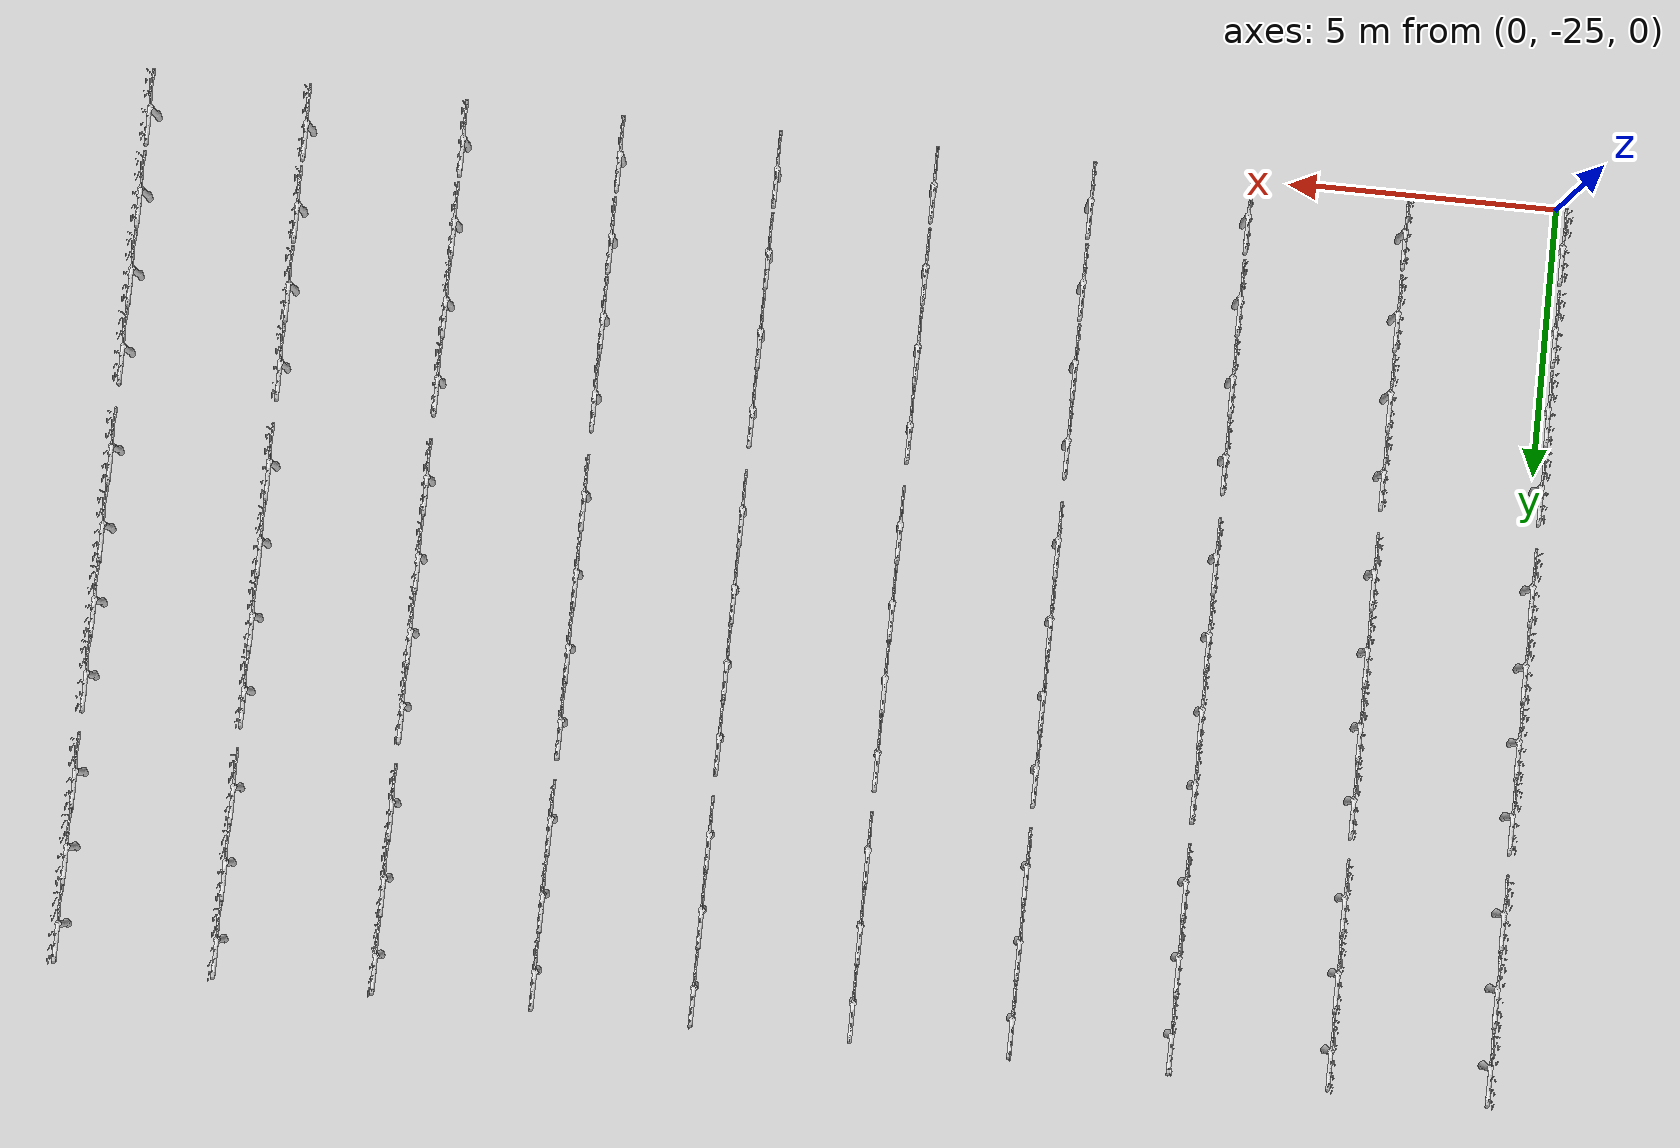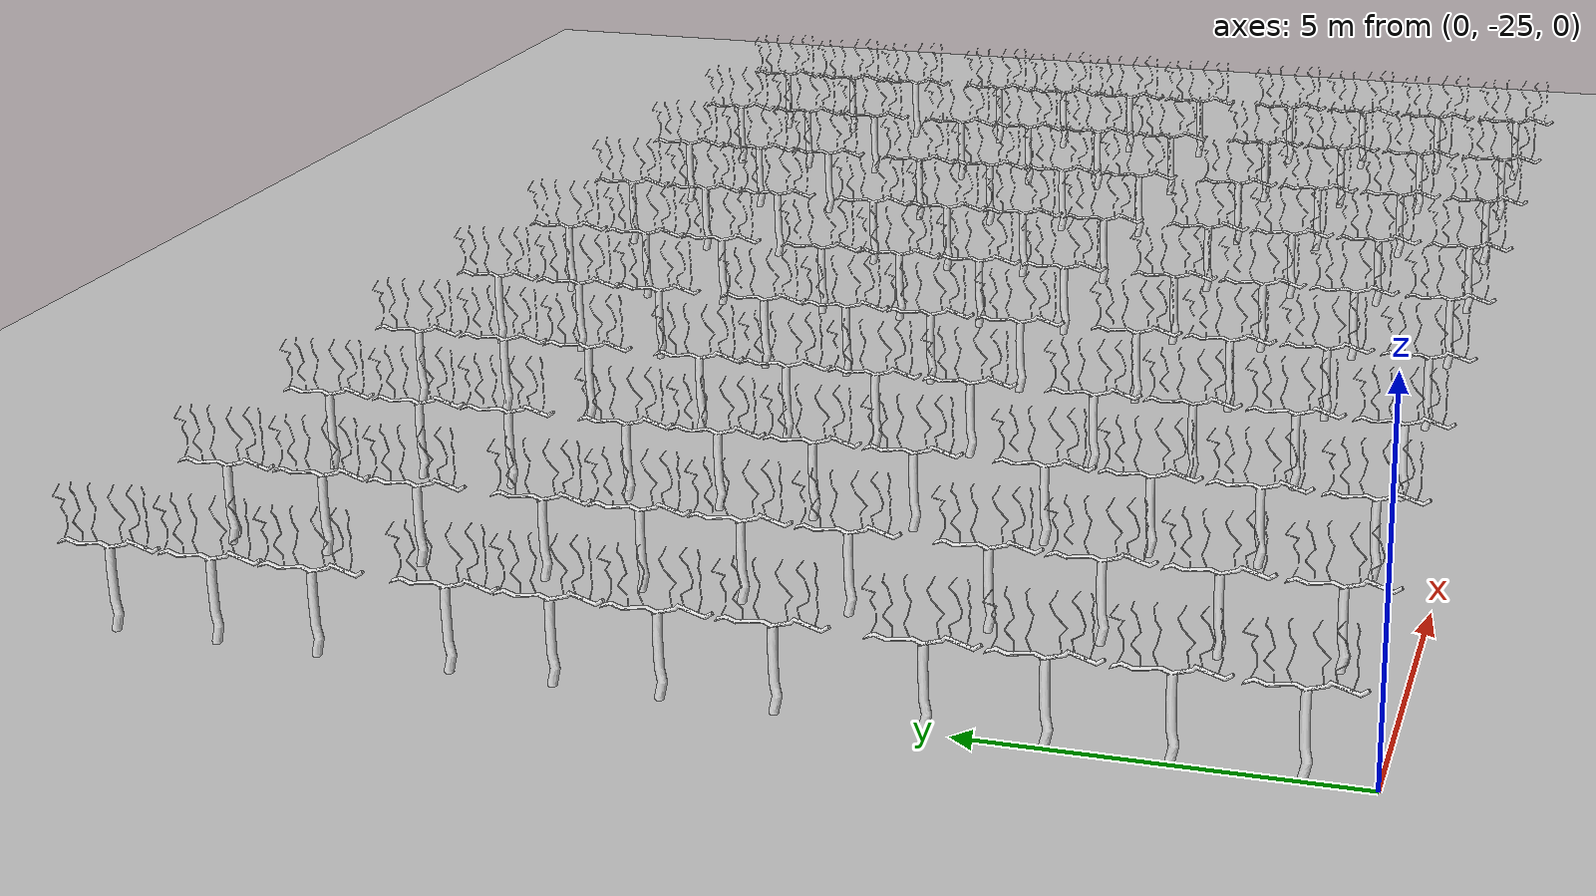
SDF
<sdf version="1.7">
 <world name="agropolis">
  <model name="ground_plane">
   <static>1</static>
   <link name="link">
    <collision name="collision">
     <geometry><plane><normal>0 0 1</normal><size>100 100</size></plane></geometry>
     <surface><friction><ode><mu>100</mu><mu2>50</mu2></ode></friction></surface>
    </collision>
    <visual name="visual">
     <cast_shadows>0</cast_shadows>
     <geometry><plane><normal>0 0 1</normal><size>100 100</size></plane></geometry>
     <material>
      <script><uri>file://media/materials/scripts/gazebo.material</uri><name>Gazebo/Grey</name></script>
     </material>
    </visual>
   </link>
  </model>
  <model name="vinya_6_fila_1">
   <static>1</static>
   <link name="link">
    <collision name="collision">
     <geometry><mesh><uri>file://models/vinya/meshes/vinya.dae</uri></mesh></geometry>
    </collision>
    <visual name="visual">
     <geometry><mesh><uri>file://models/vinya/meshes/vinya.dae</uri></mesh></geometry>
    </visual>
   </link>
   <pose>0.0 -9.06325 0.03 0 -0 1.57</pose>
  </model>
  <model name="vinya_7_fila_1">
   <static>1</static>
   <link name="link">
    <collision name="collision">
     <geometry><mesh><uri>file://models/vinya/meshes/vinya.dae</uri></mesh></geometry>
    </collision>
    <visual name="visual">
     <geometry><mesh><uri>file://models/vinya/meshes/vinya.dae</uri></mesh></geometry>
    </visual>
   </link>
   <pose>0.0 -10.4717 0.03 0 -0 1.57</pose>
  </model>
  <model name="vinya_8_fila_1">
   <static>1</static>
   <link name="link">
    <collision name="collision">
     <geometry><mesh><uri>file://models/vinya/meshes/vinya.dae</uri></mesh></geometry>
    </collision>
    <visual name="visual">
     <geometry><mesh><uri>file://models/vinya/meshes/vinya.dae</uri></mesh></geometry>
    </visual>
   </link>
   <pose>0.0 -11.8519 0.03 0 -0 1.57</pose>
  </model>
  <model name="vinya_9_fila_1">
   <static>1</static>
   <link name="link">
    <collision name="collision">
     <geometry><mesh><uri>file://models/vinya/meshes/vinya.dae</uri></mesh></geometry>
    </collision>
    <visual name="visual">
     <geometry><mesh><uri>file://models/vinya/meshes/vinya.dae</uri></mesh></geometry>
    </visual>
   </link>
   <pose>0.0 -13.6368 0.03 0 -0 1.57</pose>
  </model>
  <model name="vinya_10_fila_1">
   <static>1</static>
   <link name="link">
    <collision name="collision">
     <geometry><mesh><uri>file://models/vinya/meshes/vinya.dae</uri></mesh></geometry>
    </collision>
    <visual name="visual">
     <geometry><mesh><uri>file://models/vinya/meshes/vinya.dae</uri></mesh></geometry>
    </visual>
   </link>
   <pose>0.0 -14.9995 0.03 0 -0 1.57</pose>
  </model>
  <model name="vinya_11_fila_1">
   <static>1</static>
   <link name="link">
    <collision name="collision">
     <geometry><mesh><uri>file://models/vinya/meshes/vinya.dae</uri></mesh></geometry>
    </collision>
    <visual name="visual">
     <geometry><mesh><uri>file://models/vinya/meshes/vinya.dae</uri></mesh></geometry>
    </visual>
   </link>
   <pose>0.0 -16.381 0.03 0 -0 1.57</pose>
  </model>
  <model name="vinya_12_fila_1">
   <static>1</static>
   <link name="link">
    <collision name="collision">
     <geometry><mesh><uri>file://models/vinya/meshes/vinya.dae</uri></mesh></geometry>
    </collision>
    <visual name="visual">
     <geometry><mesh><uri>file://models/vinya/meshes/vinya.dae</uri></mesh></geometry>
    </visual>
   </link>
   <pose>0.0 -17.8271 0.03 0 -0 1.57</pose>
  </model>
  <model name="vinya_13_fila_1">
   <static>1</static>
   <link name="link">
    <collision name="collision">
     <geometry><mesh><uri>file://models/vinya/meshes/vinya.dae</uri></mesh></geometry>
    </collision>
    <visual name="visual">
     <geometry><mesh><uri>file://models/vinya/meshes/vinya.dae</uri></mesh></geometry>
    </visual>
   </link>
   <pose>0.0 -19.6679 0.03 0 -0 1.57</pose>
  </model>
  <model name="vinya_14_fila_1">
   <static>1</static>
   <link name="link">
    <collision name="collision">
     <geometry><mesh><uri>file://models/vinya/meshes/vinya.dae</uri></mesh></geometry>
    </collision>
    <visual name="visual">
     <geometry><mesh><uri>file://models/vinya/meshes/vinya.dae</uri></mesh></geometry>
    </visual>
   </link>
   <pose>0.0 -21.121 0.03 0 -0 1.57</pose>
  </model>
  <model name="vinya_15_fila_1">
   <static>1</static>
   <link name="link">
    <collision name="collision">
     <geometry><mesh><uri>file://models/vinya/meshes/vinya.dae</uri></mesh></geometry>
    </collision>
    <visual name="visual">
     <geometry><mesh><uri>file://models/vinya/meshes/vinya.dae</uri></mesh></geometry>
    </visual>
   </link>
   <pose>0.0 -22.6011 0.03 0 -0 1.57</pose>
  </model>
  <model name="vinya_16_fila_1">
   <static>1</static>
   <link name="link">
    <collision name="collision">
     <geometry><mesh><uri>file://models/vinya/meshes/vinya.dae</uri></mesh></geometry>
    </collision>
    <visual name="visual">
     <geometry><mesh><uri>file://models/vinya/meshes/vinya.dae</uri></mesh></geometry>
    </visual>
   </link>
   <pose>0.0 -24.1275 0.03 0 -0 1.57</pose>
  </model>
  <model name="vinya_6_fila_2">
   <static>1</static>
   <link name="link">
    <collision name="collision">
     <geometry><mesh><uri>file://models/vinya/meshes/vinya.dae</uri></mesh></geometry>
    </collision>
    <visual name="visual">
     <geometry><mesh><uri>file://models/vinya/meshes/vinya.dae</uri></mesh></geometry>
    </visual>
   </link>
   <pose>2.9 -9.06325 0.03 0 -0 1.57</pose>
  </model>
  <model name="vinya_7_fila_2">
   <static>1</static>
   <link name="link">
    <collision name="collision">
     <geometry><mesh><uri>file://models/vinya/meshes/vinya.dae</uri></mesh></geometry>
    </collision>
    <visual name="visual">
     <geometry><mesh><uri>file://models/vinya/meshes/vinya.dae</uri></mesh></geometry>
    </visual>
   </link>
   <pose>2.9 -10.4717 0.03 0 -0 1.57</pose>
  </model>
  <model name="vinya_8_fila_2">
   <static>1</static>
   <link name="link">
    <collision name="collision">
     <geometry><mesh><uri>file://models/vinya/meshes/vinya.dae</uri></mesh></geometry>
    </collision>
    <visual name="visual">
     <geometry><mesh><uri>file://models/vinya/meshes/vinya.dae</uri></mesh></geometry>
    </visual>
   </link>
   <pose>2.9 -11.8519 0.03 0 -0 1.57</pose>
  </model>
  <model name="vinya_9_fila_2">
   <static>1</static>
   <link name="link">
    <collision name="collision">
     <geometry><mesh><uri>file://models/vinya/meshes/vinya.dae</uri></mesh></geometry>
    </collision>
    <visual name="visual">
     <geometry><mesh><uri>file://models/vinya/meshes/vinya.dae</uri></mesh></geometry>
    </visual>
   </link>
   <pose>2.9 -13.6368 0.03 0 -0 1.57</pose>
  </model>
  <model name="vinya_10_fila_2">
   <static>1</static>
   <link name="link">
    <collision name="collision">
     <geometry><mesh><uri>file://models/vinya/meshes/vinya.dae</uri></mesh></geometry>
    </collision>
    <visual name="visual">
     <geometry><mesh><uri>file://models/vinya/meshes/vinya.dae</uri></mesh></geometry>
    </visual>
   </link>
   <pose>2.9 -14.9995 0.03 0 -0 1.57</pose>
  </model>
  <model name="vinya_11_fila_2">
   <static>1</static>
   <link name="link">
    <collision name="collision">
     <geometry><mesh><uri>file://models/vinya/meshes/vinya.dae</uri></mesh></geometry>
    </collision>
    <visual name="visual">
     <geometry><mesh><uri>file://models/vinya/meshes/vinya.dae</uri></mesh></geometry>
    </visual>
   </link>
   <pose>2.9 -16.381 0.03 0 -0 1.57</pose>
  </model>
  <model name="vinya_12_fila_2">
   <static>1</static>
   <link name="link">
    <collision name="collision">
     <geometry><mesh><uri>file://models/vinya/meshes/vinya.dae</uri></mesh></geometry>
    </collision>
    <visual name="visual">
     <geometry><mesh><uri>file://models/vinya/meshes/vinya.dae</uri></mesh></geometry>
    </visual>
   </link>
   <pose>2.9 -17.8271 0.03 0 -0 1.57</pose>
  </model>
  <model name="vinya_13_fila_2">
   <static>1</static>
   <link name="link">
    <collision name="collision">
     <geometry><mesh><uri>file://models/vinya/meshes/vinya.dae</uri></mesh></geometry>
    </collision>
    <visual name="visual">
     <geometry><mesh><uri>file://models/vinya/meshes/vinya.dae</uri></mesh></geometry>
    </visual>
   </link>
   <pose>2.9 -19.6679 0.03 0 -0 1.57</pose>
  </model>
  <model name="vinya_14_fila_2">
   <static>1</static>
   <link name="link">
    <collision name="collision">
     <geometry><mesh><uri>file://models/vinya/meshes/vinya.dae</uri></mesh></geometry>
    </collision>
    <visual name="visual">
     <geometry><mesh><uri>file://models/vinya/meshes/vinya.dae</uri></mesh></geometry>
    </visual>
   </link>
   <pose>2.9 -21.121 0.03 0 -0 1.57</pose>
  </model>
  <model name="vinya_15_fila_2">
   <static>1</static>
   <link name="link">
    <collision name="collision">
     <geometry><mesh><uri>file://models/vinya/meshes/vinya.dae</uri></mesh></geometry>
    </collision>
    <visual name="visual">
     <geometry><mesh><uri>file://models/vinya/meshes/vinya.dae</uri></mesh></geometry>
    </visual>
   </link>
   <pose>2.9 -22.6011 0.03 0 -0 1.57</pose>
  </model>
  <model name="vinya_16_fila_2">
   <static>1</static>
   <link name="link">
    <collision name="collision">
     <geometry><mesh><uri>file://models/vinya/meshes/vinya.dae</uri></mesh></geometry>
    </collision>
    <visual name="visual">
     <geometry><mesh><uri>file://models/vinya/meshes/vinya.dae</uri></mesh></geometry>
    </visual>
   </link>
   <pose>2.9 -24.1275 0.03 0 -0 1.57</pose>
  </model>
  <model name="vinya_6_fila_3">
   <static>1</static>
   <link name="link">
    <collision name="collision">
     <geometry><mesh><uri>file://models/vinya/meshes/vinya.dae</uri></mesh></geometry>
    </collision>
    <visual name="visual">
     <geometry><mesh><uri>file://models/vinya/meshes/vinya.dae</uri></mesh></geometry>
    </visual>
   </link>
   <pose>5.8 -9.06325 0.03 0 -0 1.57</pose>
  </model>
  <model name="vinya_7_fila_3">
   <static>1</static>
   <link name="link">
    <collision name="collision">
     <geometry><mesh><uri>file://models/vinya/meshes/vinya.dae</uri></mesh></geometry>
    </collision>
    <visual name="visual">
     <geometry><mesh><uri>file://models/vinya/meshes/vinya.dae</uri></mesh></geometry>
    </visual>
   </link>
   <pose>5.8 -10.4717 0.03 0 -0 1.57</pose>
  </model>
  <model name="vinya_8_fila_3">
   <static>1</static>
   <link name="link">
    <collision name="collision">
     <geometry><mesh><uri>file://models/vinya/meshes/vinya.dae</uri></mesh></geometry>
    </collision>
    <visual name="visual">
     <geometry><mesh><uri>file://models/vinya/meshes/vinya.dae</uri></mesh></geometry>
    </visual>
   </link>
   <pose>5.8 -11.8519 0.03 0 -0 1.57</pose>
  </model>
  <model name="vinya_9_fila_3">
   <static>1</static>
   <link name="link">
    <collision name="collision">
     <geometry><mesh><uri>file://models/vinya/meshes/vinya.dae</uri></mesh></geometry>
    </collision>
    <visual name="visual">
     <geometry><mesh><uri>file://models/vinya/meshes/vinya.dae</uri></mesh></geometry>
    </visual>
   </link>
   <pose>5.8 -13.6368 0.03 0 -0 1.57</pose>
  </model>
  <model name="vinya_10_fila_3">
   <static>1</static>
   <link name="link">
    <collision name="collision">
     <geometry><mesh><uri>file://models/vinya/meshes/vinya.dae</uri></mesh></geometry>
    </collision>
    <visual name="visual">
     <geometry><mesh><uri>file://models/vinya/meshes/vinya.dae</uri></mesh></geometry>
    </visual>
   </link>
   <pose>5.8 -14.9995 0.03 0 -0 1.57</pose>
  </model>
  <model name="vinya_11_fila_3">
   <static>1</static>
   <link name="link">
    <collision name="collision">
     <geometry><mesh><uri>file://models/vinya/meshes/vinya.dae</uri></mesh></geometry>
    </collision>
    <visual name="visual">
     <geometry><mesh><uri>file://models/vinya/meshes/vinya.dae</uri></mesh></geometry>
    </visual>
   </link>
   <pose>5.8 -16.381 0.03 0 -0 1.57</pose>
  </model>
  <model name="vinya_12_fila_3">
   <static>1</static>
   <link name="link">
    <collision name="collision">
     <geometry><mesh><uri>file://models/vinya/meshes/vinya.dae</uri></mesh></geometry>
    </collision>
    <visual name="visual">
     <geometry><mesh><uri>file://models/vinya/meshes/vinya.dae</uri></mesh></geometry>
    </visual>
   </link>
   <pose>5.8 -17.8271 0.03 0 -0 1.57</pose>
  </model>
  <model name="vinya_13_fila_3">
   <static>1</static>
   <link name="link">
    <collision name="collision">
     <geometry><mesh><uri>file://models/vinya/meshes/vinya.dae</uri></mesh></geometry>
    </collision>
    <visual name="visual">
     <geometry><mesh><uri>file://models/vinya/meshes/vinya.dae</uri></mesh></geometry>
    </visual>
   </link>
   <pose>5.8 -19.6679 0.03 0 -0 1.57</pose>
  </model>
  <model name="vinya_14_fila_3">
   <static>1</static>
   <link name="link">
    <collision name="collision">
     <geometry><mesh><uri>file://models/vinya/meshes/vinya.dae</uri></mesh></geometry>
    </collision>
    <visual name="visual">
     <geometry><mesh><uri>file://models/vinya/meshes/vinya.dae</uri></mesh></geometry>
    </visual>
   </link>
   <pose>5.8 -21.121 0.03 0 -0 1.57</pose>
  </model>
  <model name="vinya_15_fila_3">
   <static>1</static>
   <link name="link">
    <collision name="collision">
     <geometry><mesh><uri>file://models/vinya/meshes/vinya.dae</uri></mesh></geometry>
    </collision>
    <visual name="visual">
     <geometry><mesh><uri>file://models/vinya/meshes/vinya.dae</uri></mesh></geometry>
    </visual>
   </link>
   <pose>5.8 -22.6011 0.03 0 -0 1.57</pose>
  </model>
  <model name="vinya_16_fila_3">
   <static>1</static>
   <link name="link">
    <collision name="collision">
     <geometry><mesh><uri>file://models/vinya/meshes/vinya.dae</uri></mesh></geometry>
    </collision>
    <visual name="visual">
     <geometry><mesh><uri>file://models/vinya/meshes/vinya.dae</uri></mesh></geometry>
    </visual>
   </link>
   <pose>5.8 -24.1275 0.03 0 -0 1.57</pose>
  </model>
  <model name="vinya_6_fila_4">
   <static>1</static>
   <link name="link">
    <collision name="collision">
     <geometry><mesh><uri>file://models/vinya/meshes/vinya.dae</uri></mesh></geometry>
    </collision>
    <visual name="visual">
     <geometry><mesh><uri>file://models/vinya/meshes/vinya.dae</uri></mesh></geometry>
    </visual>
   </link>
   <pose>8.7 -9.06325 0.03 0 -0 1.57</pose>
  </model>
  <model name="vinya_7_fila_4">
   <static>1</static>
   <link name="link">
    <collision name="collision">
     <geometry><mesh><uri>file://models/vinya/meshes/vinya.dae</uri></mesh></geometry>
    </collision>
    <visual name="visual">
     <geometry><mesh><uri>file://models/vinya/meshes/vinya.dae</uri></mesh></geometry>
    </visual>
   </link>
   <pose>8.7 -10.4717 0.03 0 -0 1.57</pose>
  </model>
  <model name="vinya_8_fila_4">
   <static>1</static>
   <link name="link">
    <collision name="collision">
     <geometry><mesh><uri>file://models/vinya/meshes/vinya.dae</uri></mesh></geometry>
    </collision>
    <visual name="visual">
     <geometry><mesh><uri>file://models/vinya/meshes/vinya.dae</uri></mesh></geometry>
    </visual>
   </link>
   <pose>8.7 -11.8519 0.03 0 -0 1.57</pose>
  </model>
  <model name="vinya_9_fila_4">
   <static>1</static>
   <link name="link">
    <collision name="collision">
     <geometry><mesh><uri>file://models/vinya/meshes/vinya.dae</uri></mesh></geometry>
    </collision>
    <visual name="visual">
     <geometry><mesh><uri>file://models/vinya/meshes/vinya.dae</uri></mesh></geometry>
    </visual>
   </link>
   <pose>8.7 -13.6368 0.03 0 -0 1.57</pose>
  </model>
  <model name="vinya_10_fila_4">
   <static>1</static>
   <link name="link">
    <collision name="collision">
     <geometry><mesh><uri>file://models/vinya/meshes/vinya.dae</uri></mesh></geometry>
    </collision>
    <visual name="visual">
     <geometry><mesh><uri>file://models/vinya/meshes/vinya.dae</uri></mesh></geometry>
    </visual>
   </link>
   <pose>8.7 -14.9995 0.03 0 -0 1.57</pose>
  </model>
  <model name="vinya_11_fila_4">
   <static>1</static>
   <link name="link">
    <collision name="collision">
     <geometry><mesh><uri>file://models/vinya/meshes/vinya.dae</uri></mesh></geometry>
    </collision>
    <visual name="visual">
     <geometry><mesh><uri>file://models/vinya/meshes/vinya.dae</uri></mesh></geometry>
    </visual>
   </link>
   <pose>8.7 -16.381 0.03 0 -0 1.57</pose>
  </model>
  <model name="vinya_12_fila_4">
   <static>1</static>
   <link name="link">
    <collision name="collision">
     <geometry><mesh><uri>file://models/vinya/meshes/vinya.dae</uri></mesh></geometry>
    </collision>
    <visual name="visual">
     <geometry><mesh><uri>file://models/vinya/meshes/vinya.dae</uri></mesh></geometry>
    </visual>
   </link>
   <pose>8.7 -17.8271 0.03 0 -0 1.57</pose>
  </model>
  <model name="vinya_13_fila_4">
   <static>1</static>
   <link name="link">
    <collision name="collision">
     <geometry><mesh><uri>file://models/vinya/meshes/vinya.dae</uri></mesh></geometry>
    </collision>
    <visual name="visual">
     <geometry><mesh><uri>file://models/vinya/meshes/vinya.dae</uri></mesh></geometry>
    </visual>
   </link>
   <pose>8.7 -19.6679 0.03 0 -0 1.57</pose>
  </model>
  <model name="vinya_14_fila_4">
   <static>1</static>
   <link name="link">
    <collision name="collision">
     <geometry><mesh><uri>file://models/vinya/meshes/vinya.dae</uri></mesh></geometry>
    </collision>
    <visual name="visual">
     <geometry><mesh><uri>file://models/vinya/meshes/vinya.dae</uri></mesh></geometry>
    </visual>
   </link>
   <pose>8.7 -21.121 0.03 0 -0 1.57</pose>
  </model>
  <model name="vinya_15_fila_4">
   <static>1</static>
   <link name="link">
    <collision name="collision">
     <geometry><mesh><uri>file://models/vinya/meshes/vinya.dae</uri></mesh></geometry>
    </collision>
    <visual name="visual">
     <geometry><mesh><uri>file://models/vinya/meshes/vinya.dae</uri></mesh></geometry>
    </visual>
   </link>
   <pose>8.7 -22.6011 0.03 0 -0 1.57</pose>
  </model>
  <model name="vinya_16_fila_4">
   <static>1</static>
   <link name="link">
    <collision name="collision">
     <geometry><mesh><uri>file://models/vinya/meshes/vinya.dae</uri></mesh></geometry>
    </collision>
    <visual name="visual">
     <geometry><mesh><uri>file://models/vinya/meshes/vinya.dae</uri></mesh></geometry>
    </visual>
   </link>
   <pose>8.7 -24.1275 0.03 0 -0 1.57</pose>
  </model>
  <model name="vinya_6_fila_5">
   <static>1</static>
   <link name="link">
    <collision name="collision">
     <geometry><mesh><uri>file://models/vinya/meshes/vinya.dae</uri></mesh></geometry>
    </collision>
    <visual name="visual">
     <geometry><mesh><uri>file://models/vinya/meshes/vinya.dae</uri></mesh></geometry>
    </visual>
   </link>
   <pose>11.6 -9.06325 0.03 0 -0 1.57</pose>
  </model>
  <model name="vinya_7_fila_5">
   <static>1</static>
   <link name="link">
    <collision name="collision">
     <geometry><mesh><uri>file://models/vinya/meshes/vinya.dae</uri></mesh></geometry>
    </collision>
    <visual name="visual">
     <geometry><mesh><uri>file://models/vinya/meshes/vinya.dae</uri></mesh></geometry>
    </visual>
   </link>
   <pose>11.6 -10.4717 0.03 0 -0 1.57</pose>
  </model>
  <model name="vinya_8_fila_5">
   <static>1</static>
   <link name="link">
    <collision name="collision">
     <geometry><mesh><uri>file://models/vinya/meshes/vinya.dae</uri></mesh></geometry>
    </collision>
    <visual name="visual">
     <geometry><mesh><uri>file://models/vinya/meshes/vinya.dae</uri></mesh></geometry>
    </visual>
   </link>
   <pose>11.6 -11.8519 0.03 0 -0 1.57</pose>
  </model>
  <model name="vinya_9_fila_5">
   <static>1</static>
   <link name="link">
    <collision name="collision">
     <geometry><mesh><uri>file://models/vinya/meshes/vinya.dae</uri></mesh></geometry>
    </collision>
    <visual name="visual">
     <geometry><mesh><uri>file://models/vinya/meshes/vinya.dae</uri></mesh></geometry>
    </visual>
   </link>
   <pose>11.6 -13.6368 0.03 0 -0 1.57</pose>
  </model>
  <model name="vinya_10_fila_5">
   <static>1</static>
   <link name="link">
    <collision name="collision">
     <geometry><mesh><uri>file://models/vinya/meshes/vinya.dae</uri></mesh></geometry>
    </collision>
    <visual name="visual">
     <geometry><mesh><uri>file://models/vinya/meshes/vinya.dae</uri></mesh></geometry>
    </visual>
   </link>
   <pose>11.6 -14.9995 0.03 0 -0 1.57</pose>
  </model>
  <model name="vinya_11_fila_5">
   <static>1</static>
   <link name="link">
    <collision name="collision">
     <geometry><mesh><uri>file://models/vinya/meshes/vinya.dae</uri></mesh></geometry>
    </collision>
    <visual name="visual">
     <geometry><mesh><uri>file://models/vinya/meshes/vinya.dae</uri></mesh></geometry>
    </visual>
   </link>
   <pose>11.6 -16.381 0.03 0 -0 1.57</pose>
  </model>
  <model name="vinya_12_fila_5">
   <static>1</static>
   <link name="link">
    <collision name="collision">
     <geometry><mesh><uri>file://models/vinya/meshes/vinya.dae</uri></mesh></geometry>
    </collision>
    <visual name="visual">
     <geometry><mesh><uri>file://models/vinya/meshes/vinya.dae</uri></mesh></geometry>
    </visual>
   </link>
   <pose>11.6 -17.8271 0.03 0 -0 1.57</pose>
  </model>
  <model name="vinya_13_fila_5">
   <static>1</static>
   <link name="link">
    <collision name="collision">
     <geometry><mesh><uri>file://models/vinya/meshes/vinya.dae</uri></mesh></geometry>
    </collision>
    <visual name="visual">
     <geometry><mesh><uri>file://models/vinya/meshes/vinya.dae</uri></mesh></geometry>
    </visual>
   </link>
   <pose>11.6 -19.6679 0.03 0 -0 1.57</pose>
  </model>
  <model name="vinya_14_fila_5">
   <static>1</static>
   <link name="link">
    <collision name="collision">
     <geometry><mesh><uri>file://models/vinya/meshes/vinya.dae</uri></mesh></geometry>
    </collision>
    <visual name="visual">
     <geometry><mesh><uri>file://models/vinya/meshes/vinya.dae</uri></mesh></geometry>
    </visual>
   </link>
   <pose>11.6 -21.121 0.03 0 -0 1.57</pose>
  </model>
  <model name="vinya_15_fila_5">
   <static>1</static>
   <link name="link">
    <collision name="collision">
     <geometry><mesh><uri>file://models/vinya/meshes/vinya.dae</uri></mesh></geometry>
    </collision>
    <visual name="visual">
     <geometry><mesh><uri>file://models/vinya/meshes/vinya.dae</uri></mesh></geometry>
    </visual>
   </link>
   <pose>11.6 -22.6011 0.03 0 -0 1.57</pose>
  </model>
  <model name="vinya_16_fila_5">
   <static>1</static>
   <link name="link">
    <collision name="collision">
     <geometry><mesh><uri>file://models/vinya/meshes/vinya.dae</uri></mesh></geometry>
    </collision>
    <visual name="visual">
     <geometry><mesh><uri>file://models/vinya/meshes/vinya.dae</uri></mesh></geometry>
    </visual>
   </link>
   <pose>11.6 -24.1275 0.03 0 -0 1.57</pose>
  </model>
  <model name="vinya_6_fila_6">
   <static>1</static>
   <link name="link">
    <collision name="collision">
     <geometry><mesh><uri>file://models/vinya/meshes/vinya.dae</uri></mesh></geometry>
    </collision>
    <visual name="visual">
     <geometry><mesh><uri>file://models/vinya/meshes/vinya.dae</uri></mesh></geometry>
    </visual>
   </link>
   <pose>14.5 -9.06325 0.03 0 -0 1.57</pose>
  </model>
  <model name="vinya_7_fila_6">
   <static>1</static>
   <link name="link">
    <collision name="collision">
     <geometry><mesh><uri>file://models/vinya/meshes/vinya.dae</uri></mesh></geometry>
    </collision>
    <visual name="visual">
     <geometry><mesh><uri>file://models/vinya/meshes/vinya.dae</uri></mesh></geometry>
    </visual>
   </link>
   <pose>14.5 -10.4717 0.03 0 -0 1.57</pose>
  </model>
  <model name="vinya_8_fila_6">
   <static>1</static>
   <link name="link">
    <collision name="collision">
     <geometry><mesh><uri>file://models/vinya/meshes/vinya.dae</uri></mesh></geometry>
    </collision>
    <visual name="visual">
     <geometry><mesh><uri>file://models/vinya/meshes/vinya.dae</uri></mesh></geometry>
    </visual>
   </link>
   <pose>14.5 -11.8519 0.03 0 -0 1.57</pose>
  </model>
  <model name="vinya_9_fila_6">
   <static>1</static>
   <link name="link">
    <collision name="collision">
     <geometry><mesh><uri>file://models/vinya/meshes/vinya.dae</uri></mesh></geometry>
    </collision>
    <visual name="visual">
     <geometry><mesh><uri>file://models/vinya/meshes/vinya.dae</uri></mesh></geometry>
    </visual>
   </link>
   <pose>14.5 -13.6368 0.03 0 -0 1.57</pose>
  </model>
  <model name="vinya_10_fila_6">
   <static>1</static>
   <link name="link">
    <collision name="collision">
     <geometry><mesh><uri>file://models/vinya/meshes/vinya.dae</uri></mesh></geometry>
    </collision>
    <visual name="visual">
     <geometry><mesh><uri>file://models/vinya/meshes/vinya.dae</uri></mesh></geometry>
    </visual>
   </link>
   <pose>14.5 -14.9995 0.03 0 -0 1.57</pose>
  </model>
  <model name="vinya_11_fila_6">
   <static>1</static>
   <link name="link">
    <collision name="collision">
     <geometry><mesh><uri>file://models/vinya/meshes/vinya.dae</uri></mesh></geometry>
    </collision>
    <visual name="visual">
     <geometry><mesh><uri>file://models/vinya/meshes/vinya.dae</uri></mesh></geometry>
    </visual>
   </link>
   <pose>14.5 -16.381 0.03 0 -0 1.57</pose>
  </model>
  <model name="vinya_12_fila_6">
   <static>1</static>
   <link name="link">
    <collision name="collision">
     <geometry><mesh><uri>file://models/vinya/meshes/vinya.dae</uri></mesh></geometry>
    </collision>
    <visual name="visual">
     <geometry><mesh><uri>file://models/vinya/meshes/vinya.dae</uri></mesh></geometry>
    </visual>
   </link>
   <pose>14.5 -17.8271 0.03 0 -0 1.57</pose>
  </model>
  <model name="vinya_13_fila_6">
   <static>1</static>
   <link name="link">
    <collision name="collision">
     <geometry><mesh><uri>file://models/vinya/meshes/vinya.dae</uri></mesh></geometry>
    </collision>
    <visual name="visual">
     <geometry><mesh><uri>file://models/vinya/meshes/vinya.dae</uri></mesh></geometry>
    </visual>
   </link>
   <pose>14.5 -19.6679 0.03 0 -0 1.57</pose>
  </model>
  <model name="vinya_14_fila_6">
   <static>1</static>
   <link name="link">
    <collision name="collision">
     <geometry><mesh><uri>file://models/vinya/meshes/vinya.dae</uri></mesh></geometry>
    </collision>
    <visual name="visual">
     <geometry><mesh><uri>file://models/vinya/meshes/vinya.dae</uri></mesh></geometry>
    </visual>
   </link>
   <pose>14.5 -21.121 0.03 0 -0 1.57</pose>
  </model>
  <model name="vinya_15_fila_6">
   <static>1</static>
   <link name="link">
    <collision name="collision">
     <geometry><mesh><uri>file://models/vinya/meshes/vinya.dae</uri></mesh></geometry>
    </collision>
    <visual name="visual">
     <geometry><mesh><uri>file://models/vinya/meshes/vinya.dae</uri></mesh></geometry>
    </visual>
   </link>
   <pose>14.5 -22.6011 0.03 0 -0 1.57</pose>
  </model>
  <model name="vinya_16_fila_6">
   <static>1</static>
   <link name="link">
    <collision name="collision">
     <geometry><mesh><uri>file://models/vinya/meshes/vinya.dae</uri></mesh></geometry>
    </collision>
    <visual name="visual">
     <geometry><mesh><uri>file://models/vinya/meshes/vinya.dae</uri></mesh></geometry>
    </visual>
   </link>
   <pose>14.5 -24.1275 0.03 0 -0 1.57</pose>
  </model>
  <model name="vinya_6_fila_7">
   <static>1</static>
   <link name="link">
    <collision name="collision">
     <geometry><mesh><uri>file://models/vinya/meshes/vinya.dae</uri></mesh></geometry>
    </collision>
    <visual name="visual">
     <geometry><mesh><uri>file://models/vinya/meshes/vinya.dae</uri></mesh></geometry>
    </visual>
   </link>
   <pose>17.4 -9.06325 0.03 0 -0 1.57</pose>
  </model>
  <model name="vinya_7_fila_7">
   <static>1</static>
   <link name="link">
    <collision name="collision">
     <geometry><mesh><uri>file://models/vinya/meshes/vinya.dae</uri></mesh></geometry>
    </collision>
    <visual name="visual">
     <geometry><mesh><uri>file://models/vinya/meshes/vinya.dae</uri></mesh></geometry>
    </visual>
   </link>
   <pose>17.4 -10.4717 0.03 0 -0 1.57</pose>
  </model>
  <model name="vinya_8_fila_7">
   <static>1</static>
   <link name="link">
    <collision name="collision">
     <geometry><mesh><uri>file://models/vinya/meshes/vinya.dae</uri></mesh></geometry>
    </collision>
    <visual name="visual">
     <geometry><mesh><uri>file://models/vinya/meshes/vinya.dae</uri></mesh></geometry>
    </visual>
   </link>
   <pose>17.4 -11.8519 0.03 0 -0 1.57</pose>
  </model>
  <model name="vinya_9_fila_7">
   <static>1</static>
   <link name="link">
    <collision name="collision">
     <geometry><mesh><uri>file://models/vinya/meshes/vinya.dae</uri></mesh></geometry>
    </collision>
    <visual name="visual">
     <geometry><mesh><uri>file://models/vinya/meshes/vinya.dae</uri></mesh></geometry>
    </visual>
   </link>
   <pose>17.4 -13.6368 0.03 0 -0 1.57</pose>
  </model>
  <model name="vinya_10_fila_7">
   <static>1</static>
   <link name="link">
    <collision name="collision">
     <geometry><mesh><uri>file://models/vinya/meshes/vinya.dae</uri></mesh></geometry>
    </collision>
    <visual name="visual">
     <geometry><mesh><uri>file://models/vinya/meshes/vinya.dae</uri></mesh></geometry>
    </visual>
   </link>
   <pose>17.4 -14.9995 0.03 0 -0 1.57</pose>
  </model>
  <model name="vinya_11_fila_7">
   <static>1</static>
   <link name="link">
    <collision name="collision">
     <geometry><mesh><uri>file://models/vinya/meshes/vinya.dae</uri></mesh></geometry>
    </collision>
    <visual name="visual">
     <geometry><mesh><uri>file://models/vinya/meshes/vinya.dae</uri></mesh></geometry>
    </visual>
   </link>
   <pose>17.4 -16.381 0.03 0 -0 1.57</pose>
  </model>
  <model name="vinya_12_fila_7">
   <static>1</static>
   <link name="link">
    <collision name="collision">
     <geometry><mesh><uri>file://models/vinya/meshes/vinya.dae</uri></mesh></geometry>
    </collision>
    <visual name="visual">
     <geometry><mesh><uri>file://models/vinya/meshes/vinya.dae</uri></mesh></geometry>
    </visual>
   </link>
   <pose>17.4 -17.8271 0.03 0 -0 1.57</pose>
  </model>
  <model name="vinya_13_fila_7">
   <static>1</static>
   <link name="link">
    <collision name="collision">
     <geometry><mesh><uri>file://models/vinya/meshes/vinya.dae</uri></mesh></geometry>
    </collision>
    <visual name="visual">
     <geometry><mesh><uri>file://models/vinya/meshes/vinya.dae</uri></mesh></geometry>
    </visual>
   </link>
   <pose>17.4 -19.6679 0.03 0 -0 1.57</pose>
  </model>
  <model name="vinya_14_fila_7">
   <static>1</static>
   <link name="link">
    <collision name="collision">
     <geometry><mesh><uri>file://models/vinya/meshes/vinya.dae</uri></mesh></geometry>
    </collision>
    <visual name="visual">
     <geometry><mesh><uri>file://models/vinya/meshes/vinya.dae</uri></mesh></geometry>
    </visual>
   </link>
   <pose>17.4 -21.121 0.03 0 -0 1.57</pose>
  </model>
  <model name="vinya_15_fila_7">
   <static>1</static>
   <link name="link">
    <collision name="collision">
     <geometry><mesh><uri>file://models/vinya/meshes/vinya.dae</uri></mesh></geometry>
    </collision>
    <visual name="visual">
     <geometry><mesh><uri>file://models/vinya/meshes/vinya.dae</uri></mesh></geometry>
    </visual>
   </link>
   <pose>17.4 -22.6011 0.03 0 -0 1.57</pose>
  </model>
  <model name="vinya_16_fila_7">
   <static>1</static>
   <link name="link">
    <collision name="collision">
     <geometry><mesh><uri>file://models/vinya/meshes/vinya.dae</uri></mesh></geometry>
    </collision>
    <visual name="visual">
     <geometry><mesh><uri>file://models/vinya/meshes/vinya.dae</uri></mesh></geometry>
    </visual>
   </link>
   <pose>17.4 -24.1275 0.03 0 -0 1.57</pose>
  </model>
  <model name="vinya_6_fila_8">
   <static>1</static>
   <link name="link">
    <collision name="collision">
     <geometry><mesh><uri>file://models/vinya/meshes/vinya.dae</uri></mesh></geometry>
    </collision>
    <visual name="visual">
     <geometry><mesh><uri>file://models/vinya/meshes/vinya.dae</uri></mesh></geometry>
    </visual>
   </link>
   <pose>20.3 -9.06325 0.03 0 -0 1.57</pose>
  </model>
  <model name="vinya_7_fila_8">
   <static>1</static>
   <link name="link">
    <collision name="collision">
     <geometry><mesh><uri>file://models/vinya/meshes/vinya.dae</uri></mesh></geometry>
    </collision>
    <visual name="visual">
     <geometry><mesh><uri>file://models/vinya/meshes/vinya.dae</uri></mesh></geometry>
    </visual>
   </link>
   <pose>20.3 -10.4717 0.03 0 -0 1.57</pose>
  </model>
  <model name="vinya_8_fila_8">
   <static>1</static>
   <link name="link">
    <collision name="collision">
     <geometry><mesh><uri>file://models/vinya/meshes/vinya.dae</uri></mesh></geometry>
    </collision>
    <visual name="visual">
     <geometry><mesh><uri>file://models/vinya/meshes/vinya.dae</uri></mesh></geometry>
    </visual>
   </link>
   <pose>20.3 -11.8519 0.03 0 -0 1.57</pose>
  </model>
  <model name="vinya_9_fila_8">
   <static>1</static>
   <link name="link">
    <collision name="collision">
     <geometry><mesh><uri>file://models/vinya/meshes/vinya.dae</uri></mesh></geometry>
    </collision>
    <visual name="visual">
     <geometry><mesh><uri>file://models/vinya/meshes/vinya.dae</uri></mesh></geometry>
    </visual>
   </link>
   <pose>20.3 -13.6368 0.03 0 -0 1.57</pose>
  </model>
  <model name="vinya_10_fila_8">
   <static>1</static>
   <link name="link">
    <collision name="collision">
     <geometry><mesh><uri>file://models/vinya/meshes/vinya.dae</uri></mesh></geometry>
    </collision>
    <visual name="visual">
     <geometry><mesh><uri>file://models/vinya/meshes/vinya.dae</uri></mesh></geometry>
    </visual>
   </link>
   <pose>20.3 -14.9995 0.03 0 -0 1.57</pose>
  </model>
  <model name="vinya_11_fila_8">
   <static>1</static>
   <link name="link">
    <collision name="collision">
     <geometry><mesh><uri>file://models/vinya/meshes/vinya.dae</uri></mesh></geometry>
    </collision>
    <visual name="visual">
     <geometry><mesh><uri>file://models/vinya/meshes/vinya.dae</uri></mesh></geometry>
    </visual>
   </link>
   <pose>20.3 -16.381 0.03 0 -0 1.57</pose>
  </model>
  <model name="vinya_12_fila_8">
   <static>1</static>
   <link name="link">
    <collision name="collision">
     <geometry><mesh><uri>file://models/vinya/meshes/vinya.dae</uri></mesh></geometry>
    </collision>
    <visual name="visual">
     <geometry><mesh><uri>file://models/vinya/meshes/vinya.dae</uri></mesh></geometry>
    </visual>
   </link>
   <pose>20.3 -17.8271 0.03 0 -0 1.57</pose>
  </model>
  <model name="vinya_13_fila_8">
   <static>1</static>
   <link name="link">
    <collision name="collision">
     <geometry><mesh><uri>file://models/vinya/meshes/vinya.dae</uri></mesh></geometry>
    </collision>
    <visual name="visual">
     <geometry><mesh><uri>file://models/vinya/meshes/vinya.dae</uri></mesh></geometry>
    </visual>
   </link>
   <pose>20.3 -19.6679 0.03 0 -0 1.57</pose>
  </model>
  <model name="vinya_14_fila_8">
   <static>1</static>
   <link name="link">
    <collision name="collision">
     <geometry><mesh><uri>file://models/vinya/meshes/vinya.dae</uri></mesh></geometry>
    </collision>
    <visual name="visual">
     <geometry><mesh><uri>file://models/vinya/meshes/vinya.dae</uri></mesh></geometry>
    </visual>
   </link>
   <pose>20.3 -21.121 0.03 0 -0 1.57</pose>
  </model>
  <model name="vinya_15_fila_8">
   <static>1</static>
   <link name="link">
    <collision name="collision">
     <geometry><mesh><uri>file://models/vinya/meshes/vinya.dae</uri></mesh></geometry>
    </collision>
    <visual name="visual">
     <geometry><mesh><uri>file://models/vinya/meshes/vinya.dae</uri></mesh></geometry>
    </visual>
   </link>
   <pose>20.3 -22.6011 0.03 0 -0 1.57</pose>
  </model>
  <model name="vinya_16_fila_8">
   <static>1</static>
   <link name="link">
    <collision name="collision">
     <geometry><mesh><uri>file://models/vinya/meshes/vinya.dae</uri></mesh></geometry>
    </collision>
    <visual name="visual">
     <geometry><mesh><uri>file://models/vinya/meshes/vinya.dae</uri></mesh></geometry>
    </visual>
   </link>
   <pose>20.3 -24.1275 0.03 0 -0 1.57</pose>
  </model>
  <model name="vinya_6_fila_9">
   <static>1</static>
   <link name="link">
    <collision name="collision">
     <geometry><mesh><uri>file://models/vinya/meshes/vinya.dae</uri></mesh></geometry>
    </collision>
    <visual name="visual">
     <geometry><mesh><uri>file://models/vinya/meshes/vinya.dae</uri></mesh></geometry>
    </visual>
   </link>
   <pose>23.2 -9.06325 0.03 0 -0 1.57</pose>
  </model>
  <model name="vinya_7_fila_9">
   <static>1</static>
   <link name="link">
    <collision name="collision">
     <geometry><mesh><uri>file://models/vinya/meshes/vinya.dae</uri></mesh></geometry>
    </collision>
    <visual name="visual">
     <geometry><mesh><uri>file://models/vinya/meshes/vinya.dae</uri></mesh></geometry>
    </visual>
   </link>
   <pose>23.2 -10.4717 0.03 0 -0 1.57</pose>
  </model>
  <model name="vinya_8_fila_9">
   <static>1</static>
   <link name="link">
    <collision name="collision">
     <geometry><mesh><uri>file://models/vinya/meshes/vinya.dae</uri></mesh></geometry>
    </collision>
    <visual name="visual">
     <geometry><mesh><uri>file://models/vinya/meshes/vinya.dae</uri></mesh></geometry>
    </visual>
   </link>
   <pose>23.2 -11.8519 0.03 0 -0 1.57</pose>
  </model>
  <model name="vinya_9_fila_9">
   <static>1</static>
   <link name="link">
    <collision name="collision">
     <geometry><mesh><uri>file://models/vinya/meshes/vinya.dae</uri></mesh></geometry>
    </collision>
    <visual name="visual">
     <geometry><mesh><uri>file://models/vinya/meshes/vinya.dae</uri></mesh></geometry>
    </visual>
   </link>
   <pose>23.2 -13.6368 0.03 0 -0 1.57</pose>
  </model>
  <model name="vinya_10_fila_9">
   <static>1</static>
   <link name="link">
    <collision name="collision">
     <geometry><mesh><uri>file://models/vinya/meshes/vinya.dae</uri></mesh></geometry>
    </collision>
    <visual name="visual">
     <geometry><mesh><uri>file://models/vinya/meshes/vinya.dae</uri></mesh></geometry>
    </visual>
   </link>
   <pose>23.2 -14.9995 0.03 0 -0 1.57</pose>
  </model>
  <model name="vinya_11_fila_9">
   <static>1</static>
   <link name="link">
    <collision name="collision">
     <geometry><mesh><uri>file://models/vinya/meshes/vinya.dae</uri></mesh></geometry>
    </collision>
    <visual name="visual">
     <geometry><mesh><uri>file://models/vinya/meshes/vinya.dae</uri></mesh></geometry>
    </visual>
   </link>
   <pose>23.2 -16.381 0.03 0 -0 1.57</pose>
  </model>
  <model name="vinya_12_fila_9">
   <static>1</static>
   <link name="link">
    <collision name="collision">
     <geometry><mesh><uri>file://models/vinya/meshes/vinya.dae</uri></mesh></geometry>
    </collision>
    <visual name="visual">
     <geometry><mesh><uri>file://models/vinya/meshes/vinya.dae</uri></mesh></geometry>
    </visual>
   </link>
   <pose>23.2 -17.8271 0.03 0 -0 1.57</pose>
  </model>
  <model name="vinya_13_fila_9">
   <static>1</static>
   <link name="link">
    <collision name="collision">
     <geometry><mesh><uri>file://models/vinya/meshes/vinya.dae</uri></mesh></geometry>
    </collision>
    <visual name="visual">
     <geometry><mesh><uri>file://models/vinya/meshes/vinya.dae</uri></mesh></geometry>
    </visual>
   </link>
   <pose>23.2 -19.6679 0.03 0 -0 1.57</pose>
  </model>
  <model name="vinya_14_fila_9">
   <static>1</static>
   <link name="link">
    <collision name="collision">
     <geometry><mesh><uri>file://models/vinya/meshes/vinya.dae</uri></mesh></geometry>
    </collision>
    <visual name="visual">
     <geometry><mesh><uri>file://models/vinya/meshes/vinya.dae</uri></mesh></geometry>
    </visual>
   </link>
   <pose>23.2 -21.121 0.03 0 -0 1.57</pose>
  </model>
  <model name="vinya_15_fila_9">
   <static>1</static>
   <link name="link">
    <collision name="collision">
     <geometry><mesh><uri>file://models/vinya/meshes/vinya.dae</uri></mesh></geometry>
    </collision>
    <visual name="visual">
     <geometry><mesh><uri>file://models/vinya/meshes/vinya.dae</uri></mesh></geometry>
    </visual>
   </link>
   <pose>23.2 -22.6011 0.03 0 -0 1.57</pose>
  </model>
  <model name="vinya_16_fila_9">
   <static>1</static>
   <link name="link">
    <collision name="collision">
     <geometry><mesh><uri>file://models/vinya/meshes/vinya.dae</uri></mesh></geometry>
    </collision>
    <visual name="visual">
     <geometry><mesh><uri>file://models/vinya/meshes/vinya.dae</uri></mesh></geometry>
    </visual>
   </link>
   <pose>23.2 -24.1275 0.03 0 -0 1.57</pose>
  </model>
  <model name="vinya_6_fila_10">
   <static>1</static>
   <link name="link">
    <collision name="collision">
     <geometry><mesh><uri>file://models/vinya/meshes/vinya.dae</uri></mesh></geometry>
    </collision>
    <visual name="visual">
     <geometry><mesh><uri>file://models/vinya/meshes/vinya.dae</uri></mesh></geometry>
    </visual>
   </link>
   <pose>26.099999999999998 -9.06325 0.03 0 -0 1.57</pose>
  </model>
  <model name="vinya_7_fila_10">
   <static>1</static>
   <link name="link">
    <collision name="collision">
     <geometry><mesh><uri>file://models/vinya/meshes/vinya.dae</uri></mesh></geometry>
    </collision>
    <visual name="visual">
     <geometry><mesh><uri>file://models/vinya/meshes/vinya.dae</uri></mesh></geometry>
    </visual>
   </link>
   <pose>26.099999999999998 -10.4717 0.03 0 -0 1.57</pose>
  </model>
  <model name="vinya_8_fila_10">
   <static>1</static>
   <link name="link">
    <collision name="collision">
     <geometry><mesh><uri>file://models/vinya/meshes/vinya.dae</uri></mesh></geometry>
    </collision>
    <visual name="visual">
     <geometry><mesh><uri>file://models/vinya/meshes/vinya.dae</uri></mesh></geometry>
    </visual>
   </link>
   <pose>26.099999999999998 -11.8519 0.03 0 -0 1.57</pose>
  </model>
  <model name="vinya_9_fila_10">
   <static>1</static>
   <link name="link">
    <collision name="collision">
     <geometry><mesh><uri>file://models/vinya/meshes/vinya.dae</uri></mesh></geometry>
    </collision>
    <visual name="visual">
     <geometry><mesh><uri>file://models/vinya/meshes/vinya.dae</uri></mesh></geometry>
    </visual>
   </link>
   <pose>26.099999999999998 -13.6368 0.03 0 -0 1.57</pose>
  </model>
  <model name="vinya_10_fila_10">
   <static>1</static>
   <link name="link">
    <collision name="collision">
     <geometry><mesh><uri>file://models/vinya/meshes/vinya.dae</uri></mesh></geometry>
    </collision>
    <visual name="visual">
     <geometry><mesh><uri>file://models/vinya/meshes/vinya.dae</uri></mesh></geometry>
    </visual>
   </link>
   <pose>26.099999999999998 -14.9995 0.03 0 -0 1.57</pose>
  </model>
  <model name="vinya_11_fila_10">
   <static>1</static>
   <link name="link">
    <collision name="collision">
     <geometry><mesh><uri>file://models/vinya/meshes/vinya.dae</uri></mesh></geometry>
    </collision>
    <visual name="visual">
     <geometry><mesh><uri>file://models/vinya/meshes/vinya.dae</uri></mesh></geometry>
    </visual>
   </link>
   <pose>26.099999999999998 -16.381 0.03 0 -0 1.57</pose>
  </model>
  <model name="vinya_12_fila_10">
   <static>1</static>
   <link name="link">
    <collision name="collision">
     <geometry><mesh><uri>file://models/vinya/meshes/vinya.dae</uri></mesh></geometry>
    </collision>
    <visual name="visual">
     <geometry><mesh><uri>file://models/vinya/meshes/vinya.dae</uri></mesh></geometry>
    </visual>
   </link>
   <pose>26.099999999999998 -17.8271 0.03 0 -0 1.57</pose>
  </model>
  <model name="vinya_13_fila_10">
   <static>1</static>
   <link name="link">
    <collision name="collision">
     <geometry><mesh><uri>file://models/vinya/meshes/vinya.dae</uri></mesh></geometry>
    </collision>
    <visual name="visual">
     <geometry><mesh><uri>file://models/vinya/meshes/vinya.dae</uri></mesh></geometry>
    </visual>
   </link>
   <pose>26.099999999999998 -19.6679 0.03 0 -0 1.57</pose>
  </model>
  <model name="vinya_14_fila_10">
   <static>1</static>
   <link name="link">
    <collision name="collision">
     <geometry><mesh><uri>file://models/vinya/meshes/vinya.dae</uri></mesh></geometry>
    </collision>
    <visual name="visual">
     <geometry><mesh><uri>file://models/vinya/meshes/vinya.dae</uri></mesh></geometry>
    </visual>
   </link>
   <pose>26.099999999999998 -21.121 0.03 0 -0 1.57</pose>
  </model>
  <model name="vinya_15_fila_10">
   <static>1</static>
   <link name="link">
    <collision name="collision">
     <geometry><mesh><uri>file://models/vinya/meshes/vinya.dae</uri></mesh></geometry>
    </collision>
    <visual name="visual">
     <geometry><mesh><uri>file://models/vinya/meshes/vinya.dae</uri></mesh></geometry>
    </visual>
   </link>
   <pose>26.099999999999998 -22.6011 0.03 0 -0 1.57</pose>
  </model>
  <model name="vinya_16_fila_10">
   <static>1</static>
   <link name="link">
    <collision name="collision">
     <geometry><mesh><uri>file://models/vinya/meshes/vinya.dae</uri></mesh></geometry>
    </collision>
    <visual name="visual">
     <geometry><mesh><uri>file://models/vinya/meshes/vinya.dae</uri></mesh></geometry>
    </visual>
   </link>
   <pose>26.099999999999998 -24.1275 0.03 0 -0 1.57</pose>
  </model>
 </world>
</sdf>
